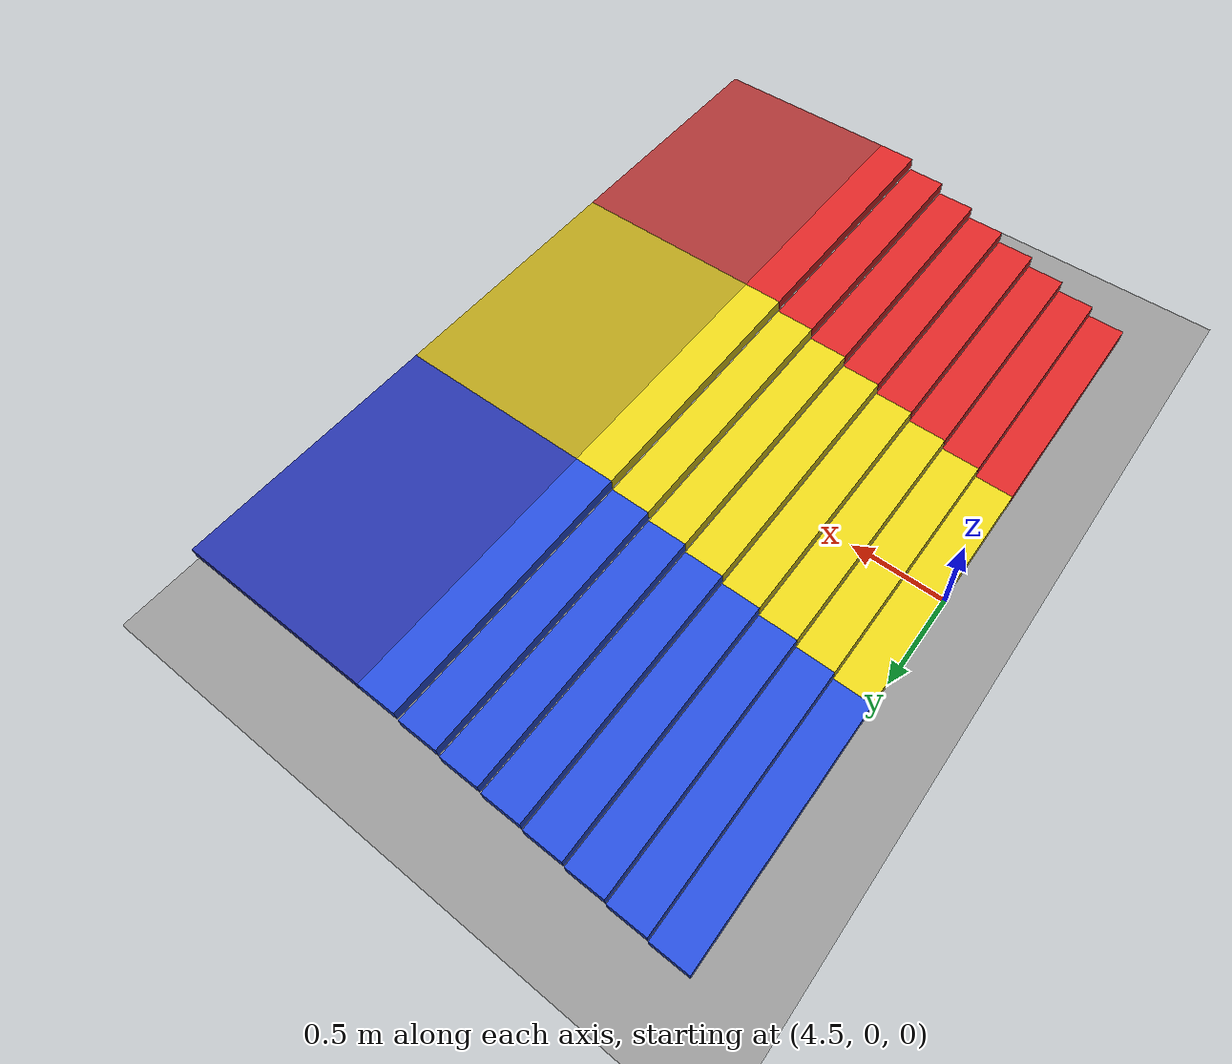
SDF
<?xml version="1.0"?>
<sdf version="1.6">
  <world name="stair_climb">

    <!-- ==================== Physics ==================== -->
    <physics type="ode">
      <real_time_update_rate>1000.0</real_time_update_rate>
      <max_step_size>0.001</max_step_size>
      <real_time_factor>1</real_time_factor>
    </physics>

    <!-- ==================== Scene ==================== -->
    <scene>
      <ambient>0.6 0.6 0.6 1</ambient>
      <background>0.4 0.5 0.6 1</background>
      <shadows>true</shadows>
    </scene>

    <!-- ==================== Lighting ==================== -->
    <light name="sun" type="directional">
      <cast_shadows>true</cast_shadows>
      <pose>0 0 10 0 0 0</pose>
      <diffuse>0.9 0.9 0.9 1</diffuse>
      <specular>0.3 0.3 0.3 1</specular>
      <direction>-0.3 0.3 -1</direction>
    </light>

    <!-- ==================== Gazebo ROS State Plugin ==================== -->
    <plugin name="gazebo_ros_state" filename="libgazebo_ros_state.so">
      <ros><namespace>/</namespace></ros>
    </plugin>

    <!-- ==================== Ground Plane ==================== -->
    <model name="ground_plane">
      <static>true</static>
      <link name="link">
        <collision name="collision">
          <geometry>
            <plane><normal>0 0 1</normal><size>100 100</size></plane>
          </geometry>
          <surface>
            <friction><ode><mu>100</mu><mu2>50</mu2></ode></friction>
          </surface>
        </collision>
        <visual name="visual">
          <cast_shadows>false</cast_shadows>
          <geometry>
            <plane><normal>0 0 1</normal><size>20 20</size></plane>
          </geometry>
          <material>
            <ambient>0.58 0.58 0.58 1</ambient>
            <diffuse>0.58 0.58 0.58 1</diffuse>
            <specular>0 0 0 1</specular>
          </material>
        </visual>
      </link>
    </model>

    <!-- ==================== Three-column Staircase ==================== -->
    <!--
      左(红) y=-1.3  中(黄) y=0  右(蓝) y=+1.3
      每阶 0.07m 高 × 0.20m 深，共 8 阶
    -->
    <model name="staircase">
      <static>true</static>
      <pose>0 0 0 0 0 0</pose>
      <link name="left_step_01">
        <pose>4.6000 -1.3000 0.0400 0 0 0</pose>
        <collision name="col">
          <geometry><box><size>0.2000 1.3000 0.0600</size></box></geometry>
        </collision>
        <visual name="vis">
          <geometry><box><size>0.2000 1.3000 0.0600</size></box></geometry>
          <material>
            <ambient>0.85 0.15 0.15 1</ambient>
            <diffuse>0.85 0.15 0.15 1</diffuse>
            <specular>0.3 0.3 0.3 20</specular>
          </material>
        </visual>
      </link>
      <link name="left_step_02">
        <pose>4.8000 -1.3000 0.1100 0 0 0</pose>
        <collision name="col">
          <geometry><box><size>0.2000 1.3000 0.0600</size></box></geometry>
        </collision>
        <visual name="vis">
          <geometry><box><size>0.2000 1.3000 0.0600</size></box></geometry>
          <material>
            <ambient>0.85 0.15 0.15 1</ambient>
            <diffuse>0.85 0.15 0.15 1</diffuse>
            <specular>0.3 0.3 0.3 20</specular>
          </material>
        </visual>
      </link>
      <link name="left_step_03">
        <pose>5.0000 -1.3000 0.1800 0 0 0</pose>
        <collision name="col">
          <geometry><box><size>0.2000 1.3000 0.0600</size></box></geometry>
        </collision>
        <visual name="vis">
          <geometry><box><size>0.2000 1.3000 0.0600</size></box></geometry>
          <material>
            <ambient>0.85 0.15 0.15 1</ambient>
            <diffuse>0.85 0.15 0.15 1</diffuse>
            <specular>0.3 0.3 0.3 20</specular>
          </material>
        </visual>
      </link>
      <link name="left_step_04">
        <pose>5.2000 -1.3000 0.2500 0 0 0</pose>
        <collision name="col">
          <geometry><box><size>0.2000 1.3000 0.0600</size></box></geometry>
        </collision>
        <visual name="vis">
          <geometry><box><size>0.2000 1.3000 0.0600</size></box></geometry>
          <material>
            <ambient>0.85 0.15 0.15 1</ambient>
            <diffuse>0.85 0.15 0.15 1</diffuse>
            <specular>0.3 0.3 0.3 20</specular>
          </material>
        </visual>
      </link>
      <link name="left_step_05">
        <pose>5.4000 -1.3000 0.3200 0 0 0</pose>
        <collision name="col">
          <geometry><box><size>0.2000 1.3000 0.0600</size></box></geometry>
        </collision>
        <visual name="vis">
          <geometry><box><size>0.2000 1.3000 0.0600</size></box></geometry>
          <material>
            <ambient>0.85 0.15 0.15 1</ambient>
            <diffuse>0.85 0.15 0.15 1</diffuse>
            <specular>0.3 0.3 0.3 20</specular>
          </material>
        </visual>
      </link>
      <link name="left_step_06">
        <pose>5.6000 -1.3000 0.3900 0 0 0</pose>
        <collision name="col">
          <geometry><box><size>0.2000 1.3000 0.0600</size></box></geometry>
        </collision>
        <visual name="vis">
          <geometry><box><size>0.2000 1.3000 0.0600</size></box></geometry>
          <material>
            <ambient>0.85 0.15 0.15 1</ambient>
            <diffuse>0.85 0.15 0.15 1</diffuse>
            <specular>0.3 0.3 0.3 20</specular>
          </material>
        </visual>
      </link>
      <link name="left_step_07">
        <pose>5.8000 -1.3000 0.4600 0 0 0</pose>
        <collision name="col">
          <geometry><box><size>0.2000 1.3000 0.0600</size></box></geometry>
        </collision>
        <visual name="vis">
          <geometry><box><size>0.2000 1.3000 0.0600</size></box></geometry>
          <material>
            <ambient>0.85 0.15 0.15 1</ambient>
            <diffuse>0.85 0.15 0.15 1</diffuse>
            <specular>0.3 0.3 0.3 20</specular>
          </material>
        </visual>
      </link>
      <link name="left_step_08">
        <pose>6.0000 -1.3000 0.5300 0 0 0</pose>
        <collision name="col">
          <geometry><box><size>0.2000 1.3000 0.0600</size></box></geometry>
        </collision>
        <visual name="vis">
          <geometry><box><size>0.2000 1.3000 0.0600</size></box></geometry>
          <material>
            <ambient>0.85 0.15 0.15 1</ambient>
            <diffuse>0.85 0.15 0.15 1</diffuse>
            <specular>0.3 0.3 0.3 20</specular>
          </material>
        </visual>
      </link>
      <link name="left_platform">
        <pose>6.6000 -1.3000 0.5300 0 0 0</pose>
        <collision name="col">
          <geometry><box><size>1.0000 1.3000 0.0600</size></box></geometry>
        </collision>
        <visual name="vis">
          <geometry><box><size>1.0000 1.3000 0.0600</size></box></geometry>
          <material>
            <ambient>0.65 0.20 0.20 1</ambient>
            <diffuse>0.65 0.20 0.20 1</diffuse>
            <specular>0.3 0.3 0.3 20</specular>
          </material>
        </visual>
      </link>
      <link name="center_step_01">
        <pose>4.6000 0.0000 0.0400 0 0 0</pose>
        <collision name="col">
          <geometry><box><size>0.2000 1.3000 0.0600</size></box></geometry>
        </collision>
        <visual name="vis">
          <geometry><box><size>0.2000 1.3000 0.0600</size></box></geometry>
          <material>
            <ambient>0.90 0.82 0.10 1</ambient>
            <diffuse>0.90 0.82 0.10 1</diffuse>
            <specular>0.3 0.3 0.3 20</specular>
          </material>
        </visual>
      </link>
      <link name="center_step_02">
        <pose>4.8000 0.0000 0.1100 0 0 0</pose>
        <collision name="col">
          <geometry><box><size>0.2000 1.3000 0.0600</size></box></geometry>
        </collision>
        <visual name="vis">
          <geometry><box><size>0.2000 1.3000 0.0600</size></box></geometry>
          <material>
            <ambient>0.90 0.82 0.10 1</ambient>
            <diffuse>0.90 0.82 0.10 1</diffuse>
            <specular>0.3 0.3 0.3 20</specular>
          </material>
        </visual>
      </link>
      <link name="center_step_03">
        <pose>5.0000 0.0000 0.1800 0 0 0</pose>
        <collision name="col">
          <geometry><box><size>0.2000 1.3000 0.0600</size></box></geometry>
        </collision>
        <visual name="vis">
          <geometry><box><size>0.2000 1.3000 0.0600</size></box></geometry>
          <material>
            <ambient>0.90 0.82 0.10 1</ambient>
            <diffuse>0.90 0.82 0.10 1</diffuse>
            <specular>0.3 0.3 0.3 20</specular>
          </material>
        </visual>
      </link>
      <link name="center_step_04">
        <pose>5.2000 0.0000 0.2500 0 0 0</pose>
        <collision name="col">
          <geometry><box><size>0.2000 1.3000 0.0600</size></box></geometry>
        </collision>
        <visual name="vis">
          <geometry><box><size>0.2000 1.3000 0.0600</size></box></geometry>
          <material>
            <ambient>0.90 0.82 0.10 1</ambient>
            <diffuse>0.90 0.82 0.10 1</diffuse>
            <specular>0.3 0.3 0.3 20</specular>
          </material>
        </visual>
      </link>
      <link name="center_step_05">
        <pose>5.4000 0.0000 0.3200 0 0 0</pose>
        <collision name="col">
          <geometry><box><size>0.2000 1.3000 0.0600</size></box></geometry>
        </collision>
        <visual name="vis">
          <geometry><box><size>0.2000 1.3000 0.0600</size></box></geometry>
          <material>
            <ambient>0.90 0.82 0.10 1</ambient>
            <diffuse>0.90 0.82 0.10 1</diffuse>
            <specular>0.3 0.3 0.3 20</specular>
          </material>
        </visual>
      </link>
      <link name="center_step_06">
        <pose>5.6000 0.0000 0.3900 0 0 0</pose>
        <collision name="col">
          <geometry><box><size>0.2000 1.3000 0.0600</size></box></geometry>
        </collision>
        <visual name="vis">
          <geometry><box><size>0.2000 1.3000 0.0600</size></box></geometry>
          <material>
            <ambient>0.90 0.82 0.10 1</ambient>
            <diffuse>0.90 0.82 0.10 1</diffuse>
            <specular>0.3 0.3 0.3 20</specular>
          </material>
        </visual>
      </link>
      <link name="center_step_07">
        <pose>5.8000 0.0000 0.4600 0 0 0</pose>
        <collision name="col">
          <geometry><box><size>0.2000 1.3000 0.0600</size></box></geometry>
        </collision>
        <visual name="vis">
          <geometry><box><size>0.2000 1.3000 0.0600</size></box></geometry>
          <material>
            <ambient>0.90 0.82 0.10 1</ambient>
            <diffuse>0.90 0.82 0.10 1</diffuse>
            <specular>0.3 0.3 0.3 20</specular>
          </material>
        </visual>
      </link>
      <link name="center_step_08">
        <pose>6.0000 0.0000 0.5300 0 0 0</pose>
        <collision name="col">
          <geometry><box><size>0.2000 1.3000 0.0600</size></box></geometry>
        </collision>
        <visual name="vis">
          <geometry><box><size>0.2000 1.3000 0.0600</size></box></geometry>
          <material>
            <ambient>0.90 0.82 0.10 1</ambient>
            <diffuse>0.90 0.82 0.10 1</diffuse>
            <specular>0.3 0.3 0.3 20</specular>
          </material>
        </visual>
      </link>
      <link name="center_platform">
        <pose>6.6000 0.0000 0.5300 0 0 0</pose>
        <collision name="col">
          <geometry><box><size>1.0000 1.3000 0.0600</size></box></geometry>
        </collision>
        <visual name="vis">
          <geometry><box><size>1.0000 1.3000 0.0600</size></box></geometry>
          <material>
            <ambient>0.70 0.62 0.10 1</ambient>
            <diffuse>0.70 0.62 0.10 1</diffuse>
            <specular>0.3 0.3 0.3 20</specular>
          </material>
        </visual>
      </link>
      <link name="right_step_01">
        <pose>4.6000 1.3000 0.0400 0 0 0</pose>
        <collision name="col">
          <geometry><box><size>0.2000 1.3000 0.0600</size></box></geometry>
        </collision>
        <visual name="vis">
          <geometry><box><size>0.2000 1.3000 0.0600</size></box></geometry>
          <material>
            <ambient>0.15 0.30 0.85 1</ambient>
            <diffuse>0.15 0.30 0.85 1</diffuse>
            <specular>0.3 0.3 0.3 20</specular>
          </material>
        </visual>
      </link>
      <link name="right_step_02">
        <pose>4.8000 1.3000 0.1100 0 0 0</pose>
        <collision name="col">
          <geometry><box><size>0.2000 1.3000 0.0600</size></box></geometry>
        </collision>
        <visual name="vis">
          <geometry><box><size>0.2000 1.3000 0.0600</size></box></geometry>
          <material>
            <ambient>0.15 0.30 0.85 1</ambient>
            <diffuse>0.15 0.30 0.85 1</diffuse>
            <specular>0.3 0.3 0.3 20</specular>
          </material>
        </visual>
      </link>
      <link name="right_step_03">
        <pose>5.0000 1.3000 0.1800 0 0 0</pose>
        <collision name="col">
          <geometry><box><size>0.2000 1.3000 0.0600</size></box></geometry>
        </collision>
        <visual name="vis">
          <geometry><box><size>0.2000 1.3000 0.0600</size></box></geometry>
          <material>
            <ambient>0.15 0.30 0.85 1</ambient>
            <diffuse>0.15 0.30 0.85 1</diffuse>
            <specular>0.3 0.3 0.3 20</specular>
          </material>
        </visual>
      </link>
      <link name="right_step_04">
        <pose>5.2000 1.3000 0.2500 0 0 0</pose>
        <collision name="col">
          <geometry><box><size>0.2000 1.3000 0.0600</size></box></geometry>
        </collision>
        <visual name="vis">
          <geometry><box><size>0.2000 1.3000 0.0600</size></box></geometry>
          <material>
            <ambient>0.15 0.30 0.85 1</ambient>
            <diffuse>0.15 0.30 0.85 1</diffuse>
            <specular>0.3 0.3 0.3 20</specular>
          </material>
        </visual>
      </link>
      <link name="right_step_05">
        <pose>5.4000 1.3000 0.3200 0 0 0</pose>
        <collision name="col">
          <geometry><box><size>0.2000 1.3000 0.0600</size></box></geometry>
        </collision>
        <visual name="vis">
          <geometry><box><size>0.2000 1.3000 0.0600</size></box></geometry>
          <material>
            <ambient>0.15 0.30 0.85 1</ambient>
            <diffuse>0.15 0.30 0.85 1</diffuse>
            <specular>0.3 0.3 0.3 20</specular>
          </material>
        </visual>
      </link>
      <link name="right_step_06">
        <pose>5.6000 1.3000 0.3900 0 0 0</pose>
        <collision name="col">
          <geometry><box><size>0.2000 1.3000 0.0600</size></box></geometry>
        </collision>
        <visual name="vis">
          <geometry><box><size>0.2000 1.3000 0.0600</size></box></geometry>
          <material>
            <ambient>0.15 0.30 0.85 1</ambient>
            <diffuse>0.15 0.30 0.85 1</diffuse>
            <specular>0.3 0.3 0.3 20</specular>
          </material>
        </visual>
      </link>
      <link name="right_step_07">
        <pose>5.8000 1.3000 0.4600 0 0 0</pose>
        <collision name="col">
          <geometry><box><size>0.2000 1.3000 0.0600</size></box></geometry>
        </collision>
        <visual name="vis">
          <geometry><box><size>0.2000 1.3000 0.0600</size></box></geometry>
          <material>
            <ambient>0.15 0.30 0.85 1</ambient>
            <diffuse>0.15 0.30 0.85 1</diffuse>
            <specular>0.3 0.3 0.3 20</specular>
          </material>
        </visual>
      </link>
      <link name="right_step_08">
        <pose>6.0000 1.3000 0.5300 0 0 0</pose>
        <collision name="col">
          <geometry><box><size>0.2000 1.3000 0.0600</size></box></geometry>
        </collision>
        <visual name="vis">
          <geometry><box><size>0.2000 1.3000 0.0600</size></box></geometry>
          <material>
            <ambient>0.15 0.30 0.85 1</ambient>
            <diffuse>0.15 0.30 0.85 1</diffuse>
            <specular>0.3 0.3 0.3 20</specular>
          </material>
        </visual>
      </link>
      <link name="right_platform">
        <pose>6.6000 1.3000 0.5300 0 0 0</pose>
        <collision name="col">
          <geometry><box><size>1.0000 1.3000 0.0600</size></box></geometry>
        </collision>
        <visual name="vis">
          <geometry><box><size>1.0000 1.3000 0.0600</size></box></geometry>
          <material>
            <ambient>0.15 0.20 0.65 1</ambient>
            <diffuse>0.15 0.20 0.65 1</diffuse>
            <specular>0.3 0.3 0.3 20</specular>
          </material>
        </visual>
      </link>
    </model>

  </world>
</sdf>
